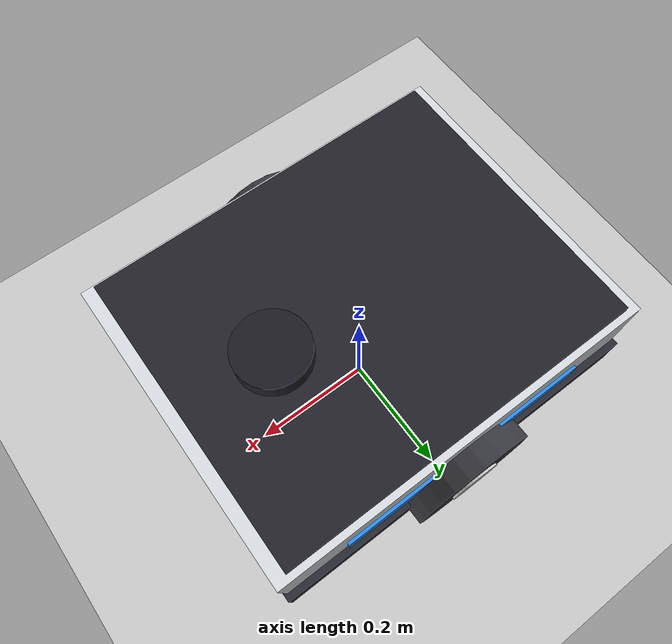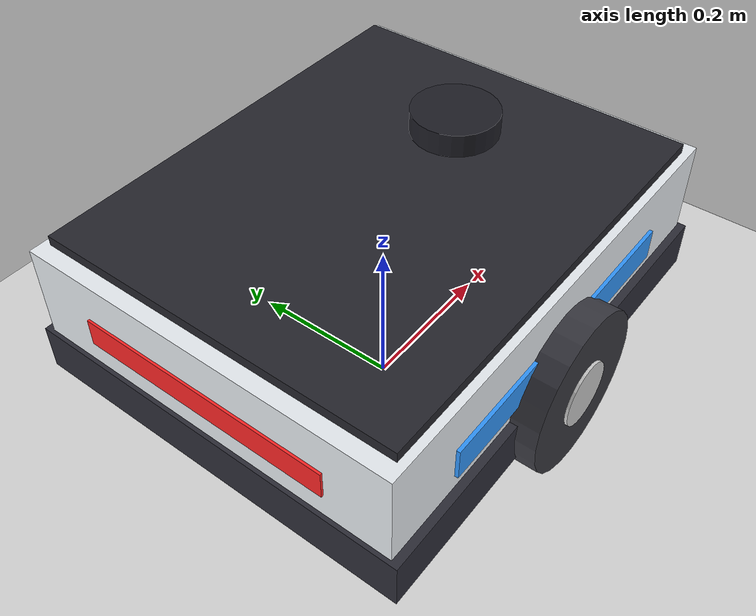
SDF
<?xml version="1.0"?>
<sdf version="1.9">
  <world name="amr_test">
    <gravity>0 0 -9.81</gravity>
    <physics name="default_physics" type="ode">
      <max_step_size>0.001</max_step_size>
      <real_time_factor>1.0</real_time_factor>
      <real_time_update_rate>1000</real_time_update_rate>
    </physics>

    <!-- World Plugins for GZ Simulation -->
    <plugin filename="gz-sim-physics-system" name="gz::sim::systems::Physics"/>
    <plugin filename="gz-sim-sensors-system" name="gz::sim::systems::Sensors">
      <render_engine>ogre2</render_engine>
    </plugin>
    <plugin filename="gz-sim-scene-broadcaster-system" name="gz::sim::systems::SceneBroadcaster"/>
    <plugin filename="gz-sim-user-commands-system" name="gz::sim::systems::UserCommands"/>
    <plugin filename="gz-sim-contact-system" name="gz::sim::systems::Contact"/>
    <plugin filename="gz-sim-imu-system" name="gz::sim::systems::Imu"/>

    <!-- Ground -->
    <model name="ground">
      <static>true</static>
      <link name="link">
        <collision name="collision">
          <geometry>
            <plane>
              <normal>0 0 1</normal>
              <size>30 30</size>
            </plane>
          </geometry>
        </collision>
        <visual name="visual">
          <geometry>
            <plane>
              <normal>0 0 1</normal>
              <size>30 30</size>
            </plane>
          </geometry>
          <material>
            <ambient>0.8 0.8 0.8 1.0</ambient>
            <diffuse>0.85 0.85 0.85 1.0</diffuse>
          </material>
        </visual>
      </link>
    </model>

    <!-- AMR -->
    <include>
      <uri>file:///Users/itz_ats_sama/amr_project/simulation/models/amr</uri>
      <name>amr</name>
      <pose>0 0 0.05 0 0 0</pose>
    </include>

    <!-- Light -->
    <light type="directional" name="sun">
      <pose>0 0 10 0 0 0</pose>
      <cast_shadows>true</cast_shadows>
      <diffuse>0.8 0.8 0.8 1.0</diffuse>
      <direction>-0.5 0.5 -1.0</direction>
    </light>
  </world>
</sdf>

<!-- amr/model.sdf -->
<sdf version="1.9">
  <model name="amr">
    <!-- CHASSIS (BASE LINK)           -->
    <!-- Dimensions: 0.60m x 0.50m x 0.20m -->
    <link name="base_link">
      <pose>0 0 0.15 0 0 0</pose>
      <inertial>
        <mass>15.0</mass>
        <inertia>
          <ixx>0.3625</ixx>
          <iyy>0.5000</iyy>
          <izz>0.7625</izz>
          <ixy>0</ixy>
          <ixz>0</ixz>
          <iyz>0</iyz>
        </inertia>
      </inertial>

      <!-- Single streamlined collision geometry for ultra-high FPS -->
      <collision name="chassis_collision">
        <geometry>
          <box>
            <size>0.60 0.50 0.20</size>
          </box>
        </geometry>
      </collision>

      <!-- INDUSTRIAL AMR VISUAL STYLING                -->

      <!-- Main Lower Industrial Chassis Body (Clean White/Alloy) -->
      <visual name="chassis_visual">
        <geometry>
          <box>
            <size>0.60 0.48 0.18</size>
          </box>
        </geometry>
        <material>
          <ambient>0.88 0.90 0.92 1.0</ambient>
          <diffuse>0.92 0.94 0.96 1.0</diffuse>
          <specular>0.4 0.4 0.4 1.0</specular>
        </material>
      </visual>

      <!-- Top High-Friction Deck / Cargo Platform (Black Textured Rubber Pad) -->
      <visual name="top_platform">
        <pose>0 0 0.095 0 0 0</pose>
        <geometry>
          <box>
            <size>0.56 0.46 0.015</size>
          </box>
        </geometry>
        <material>
          <ambient>0.10 0.10 0.12 1.0</ambient>
          <diffuse>0.15 0.15 0.18 1.0</diffuse>
          <specular>0.1 0.1 0.1 1.0</specular>
        </material>
      </visual>

      <!-- Perimeter Protective Safety Bumper Skirt (Dark Anthracite) -->
      <visual name="safety_bumper">
        <pose>0 0 -0.06 0 0 0</pose>
        <geometry>
          <box>
            <size>0.61 0.50 0.06</size>
          </box>
        </geometry>
        <material>
          <ambient>0.12 0.12 0.15 1.0</ambient>
          <diffuse>0.18 0.18 0.22 1.0</diffuse>
        </material>
      </visual>

      <!-- Front Status / Directional LED Light Bar -->
      <visual name="front_status_led">
        <pose>0.298 0 0.02 0 0 0</pose>
        <geometry>
          <box>
            <size>0.01 0.32 0.035</size>
          </box>
        </geometry>
        <material>
          <ambient>0.0 0.75 1.0 1.0</ambient>
          <diffuse>0.1 0.85 1.0 1.0</diffuse>
        </material>
      </visual>

      <!-- Rear Safety Braking LED Indicator -->
      <visual name="rear_status_led">
        <pose>-0.298 0 0.02 0 0 0</pose>
        <geometry>
          <box>
            <size>0.01 0.32 0.035</size>
          </box>
        </geometry>
        <material>
          <ambient>0.9 0.1 0.1 1.0</ambient>
          <diffuse>1.0 0.15 0.15 1.0</diffuse>
        </material>
      </visual>

      <!-- Side Branding / Identification Stripe -->
      <visual name="left_brand_stripe">
        <pose>0 0.242 0.01 0 0 0</pose>
        <geometry>
          <box>
            <size>0.40 0.005 0.04</size>
          </box>
        </geometry>
        <material>
          <ambient>0.1 0.5 0.9 1.0</ambient>
          <diffuse>0.2 0.6 1.0 1.0</diffuse>
        </material>
      </visual>
      <visual name="right_brand_stripe">
        <pose>0 -0.242 0.01 0 0 0</pose>
        <geometry>
          <box>
            <size>0.40 0.005 0.04</size>
          </box>
        </geometry>
        <material>
          <ambient>0.1 0.5 0.9 1.0</ambient>
          <diffuse>0.2 0.6 1.0 1.0</diffuse>
        </material>
      </visual>

      <!-- IMU SENSOR -->
      <sensor name="imu_sensor" type="imu">
        <always_on>1</always_on>
        <update_rate>50</update_rate>
        <visualize>false</visualize>
        <topic>imu</topic>
      </sensor>

      <!-- CONTACT SENSOR FOR ZERO-COLLISION EVALUATION -->
      <sensor name="chassis_contact_sensor" type="contact">
        <always_on>1</always_on>
        <update_rate>30</update_rate>
        <contact>
          <collision>chassis_collision</collision>
        </contact>
        <topic>amr_contact</topic>
      </sensor>
    </link>

    <!-- LEFT DRIVE WHEEL              -->
    <!-- Radius: 0.10m, Width: 0.05m   -->
    <link name="left_wheel">
      <pose>0 0.25 0.10 -1.57079632679 0 0</pose>
      <inertial>
        <mass>1.5</mass>
        <inertia>
          <ixx>0.00406</ixx>
          <iyy>0.00406</iyy>
          <izz>0.0075</izz>
          <ixy>0</ixy><ixz>0</ixz><iyz>0</iyz>
        </inertia>
      </inertial>
      <collision name="collision">
        <geometry>
          <cylinder>
            <radius>0.10</radius>
            <length>0.05</length>
          </cylinder>
        </geometry>
        <surface>
          <friction>
            <ode>
              <mu>1.2</mu>
              <mu2>1.2</mu2>
            </ode>
          </friction>
        </surface>
      </collision>
      <visual name="visual">
        <geometry>
          <cylinder>
            <radius>0.10</radius>
            <length>0.05</length>
          </cylinder>
        </geometry>
        <material>
          <ambient>0.15 0.15 0.18 1.0</ambient>
          <diffuse>0.22 0.22 0.25 1.0</diffuse>
        </material>
      </visual>
      <!-- Rim Center Hubcap -->
      <visual name="hubcap">
        <pose>0 0 0.026 0 0 0</pose>
        <geometry>
          <cylinder>
            <radius>0.04</radius>
            <length>0.005</length>
          </cylinder>
        </geometry>
        <material>
          <ambient>0.7 0.7 0.7 1.0</ambient>
          <diffuse>0.8 0.8 0.8 1.0</diffuse>
        </material>
      </visual>
    </link>

    <!-- RIGHT DRIVE WHEEL             -->
    <!-- Radius: 0.10m, Width: 0.05m   -->
    <link name="right_wheel">
      <pose>0 -0.25 0.10 -1.57079632679 0 0</pose>
      <inertial>
        <mass>1.5</mass>
        <inertia>
          <ixx>0.00406</ixx>
          <iyy>0.00406</iyy>
          <izz>0.0075</izz>
          <ixy>0</ixy><ixz>0</ixz><iyz>0</iyz>
        </inertia>
      </inertial>
      <collision name="collision">
        <geometry>
          <cylinder>
            <radius>0.10</radius>
            <length>0.05</length>
          </cylinder>
        </geometry>
        <surface>
          <friction>
            <ode>
              <mu>1.2</mu>
              <mu2>1.2</mu2>
            </ode>
          </friction>
        </surface>
      </collision>
      <visual name="visual">
        <geometry>
          <cylinder>
            <radius>0.10</radius>
            <length>0.05</length>
          </cylinder>
        </geometry>
        <material>
          <ambient>0.15 0.15 0.18 1.0</ambient>
          <diffuse>0.22 0.22 0.25 1.0</diffuse>
        </material>
      </visual>
      <!-- Rim Center Hubcap -->
      <visual name="hubcap">
        <pose>0 0 -0.026 0 0 0</pose>
        <geometry>
          <cylinder>
            <radius>0.04</radius>
            <length>0.005</length>
          </cylinder>
        </geometry>
        <material>
          <ambient>0.7 0.7 0.7 1.0</ambient>
          <diffuse>0.8 0.8 0.8 1.0</diffuse>
        </material>
      </visual>
    </link>

    <!-- LEFT WHEEL JOINT              -->
    <joint name="left_wheel_joint" type="revolute">
      <parent>base_link</parent>
      <child>left_wheel</child>
      <axis>
        <xyz>0 0 1</xyz>
        <limit>
          <lower>-1e16</lower>
          <upper>1e16</upper>
        </limit>
      </axis>
    </joint>

    <!-- RIGHT WHEEL JOINT             -->
    <joint name="right_wheel_joint" type="revolute">
      <parent>base_link</parent>
      <child>right_wheel</child>
      <axis>
        <xyz>0 0 1</xyz>
        <limit>
          <lower>-1e16</lower>
          <upper>1e16</upper>
        </limit>
      </axis>
    </joint>

    <!-- CASTER WHEEL                  -->
    <link name="caster">
      <pose>-0.20 0 0.05 0 0 0</pose>
      <inertial>
        <mass>0.5</mass>
        <inertia>
          <ixx>0.0005</ixx>
          <iyy>0.0005</iyy>
          <izz>0.0005</izz>
          <ixy>0</ixy><ixz>0</ixz><iyz>0</iyz>
        </inertia>
      </inertial>
      <collision name="collision">
        <geometry>
          <sphere>
            <radius>0.05</radius>
          </sphere>
        </geometry>
        <surface>
          <friction>
            <ode>
              <mu>0.01</mu>
              <mu2>0.01</mu2>
              <slip1>1.0</slip1>
              <slip2>1.0</slip2>
            </ode>
          </friction>
        </surface>
      </collision>
      <visual name="visual">
        <geometry>
          <sphere>
            <radius>0.05</radius>
          </sphere>
        </geometry>
        <material>
          <ambient>0.2 0.2 0.2 1.0</ambient>
          <diffuse>0.3 0.3 0.3 1.0</diffuse>
        </material>
      </visual>
    </link>

    <joint name="caster_joint" type="ball">
      <parent>base_link</parent>
      <child>caster</child>
    </joint>

    <!-- 2D PLANAR LIDAR SCANNER       -->
    <link name="lidar_link">
      <pose>0.14 0 0.26 0 0 0</pose>
      <inertial>
        <mass>0.2</mass>
        <inertia>
          <ixx>0.0001</ixx>
          <iyy>0.0001</iyy>
          <izz>0.0001</izz>
          <ixy>0</ixy><ixz>0</ixz><iyz>0</iyz>
        </inertia>
      </inertial>
      <!-- Cylindrical Sensor Housing with Protective Shield -->
      <visual name="lidar_housing">
        <geometry>
          <cylinder>
            <radius>0.055</radius>
            <length>0.045</length>
          </cylinder>
        </geometry>
        <material>
          <ambient>0.08 0.08 0.10 1.0</ambient>
          <diffuse>0.12 0.12 0.15 1.0</diffuse>
        </material>
      </visual>
      <visual name="lidar_scanner_eye">
        <pose>0 0 0.01 0 0 0</pose>
        <geometry>
          <cylinder>
            <radius>0.045</radius>
            <length>0.02</length>
          </cylinder>
        </geometry>
        <material>
          <ambient>0.0 0.7 0.9 1.0</ambient>
          <diffuse>0.0 0.85 1.0 1.0</diffuse>
        </material>
      </visual>
      <collision name="lidar_collision">
        <geometry>
          <cylinder>
            <radius>0.055</radius>
            <length>0.045</length>
          </cylinder>
        </geometry>
      </collision>
      <sensor name="lidar_2d" type="gpu_lidar">
        <pose>0 0 0 0 0 0</pose>
        <always_on>1</always_on>
        <update_rate>15</update_rate>
        <visualize>true</visualize>
        <ray>
          <scan>
            <horizontal>
              <samples>720</samples>
              <resolution>1</resolution>
              <min_angle>-3.14159265</min_angle>
              <max_angle>3.14159265</max_angle>
            </horizontal>
          </scan>
          <range>
            <min>0.10</min>
            <max>10.0</max>
            <resolution>0.01</resolution>
          </range>
          <noise>
            <type>gaussian</type>
            <mean>0.0</mean>
            <stddev>0.01</stddev>
          </noise>
        </ray>
        <topic>scan</topic>
      </sensor>
    </link>

    <joint name="lidar_joint" type="fixed">
      <parent>base_link</parent>
      <child>lidar_link</child>
    </joint>

    <!-- DIFFERENTIAL DRIVE PLUGIN     -->
    <plugin
      filename="gz-sim-diff-drive-system"
      name="gz::sim::systems::DiffDrive">
      <left_joint>left_wheel_joint</left_joint>
      <right_joint>right_wheel_joint</right_joint>
      <wheel_separation>0.50</wheel_separation>
      <wheel_radius>0.10</wheel_radius>
      <odom_publish_frequency>20</odom_publish_frequency>
      <topic>cmd_vel</topic>
      <odom_topic>odom</odom_topic>
      <tf_topic>tf</tf_topic>
      <frame_id>odom</frame_id>
      <child_frame_id>base_link</child_frame_id>
      <max_linear_acceleration>1.5</max_linear_acceleration>
      <max_angular_acceleration>2.5</max_angular_acceleration>
      <max_linear_velocity>1.2</max_linear_velocity>
      <min_linear_velocity>-1.2</min_linear_velocity>
      <max_angular_velocity>2.0</max_angular_velocity>
      <min_angular_velocity>-2.0</min_angular_velocity>
    </plugin>
  </model>
</sdf>
